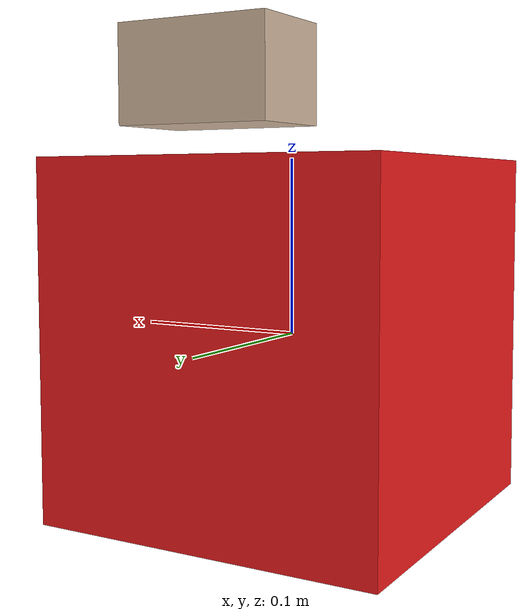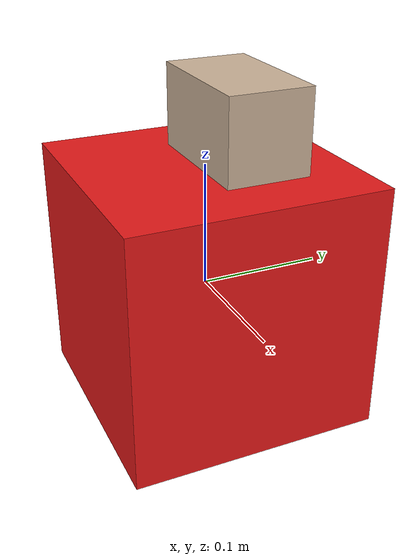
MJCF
<mujoco model="servo">
    <compiler angle="degree" coordinate="global" inertiafromgeom="true"/>

    <option integrator="Euler" timestep="0.01">
    </option>

    <asset>
        <texture builtin="gradient" height="100" rgb1="1 1 1" rgb2="0 0 0" type="skybox" width="100"/>
        <texture builtin="flat" height="1278" mark="cross" markrgb="1 1 1" name="texgeom" random="0.01"
                 rgb1="0.8 0.6 0.4" rgb2="0.8 0.6 0.4" type="cube" width="127"/>
        <material name="geom" texture="texgeom" texuniform="true"/>
    </asset>

    <worldbody>
      <body>
        <geom density="1000" pos="0 0 0.0" size=".1 .1 .1" type="box" rgba=".9 .1 .1 1"/>
        <body>
          <geom density="3000" size="0.05 0.03 0.03" type="box" material="geom" rgba="0.8 0.7 .6 1" pos="0.05 0 0.15"/>
          <joint name="servo_1" pos="0 0 0.15" range="-90 90" axis="0 0 1" limited="true" type="hinge" armature='0.1' damping="0.1" frictionloss="0.1"/>
        </body>
      </body>
    </worldbody>

    <actuator>
      <motor name="actuator_joint01" joint="servo_1" ctrllimited="true" ctrlrange="-16.36 16.36" forcelimited="true" forcerange="-16.36 16.36" gear="1"/>
    </actuator>
</mujoco>
